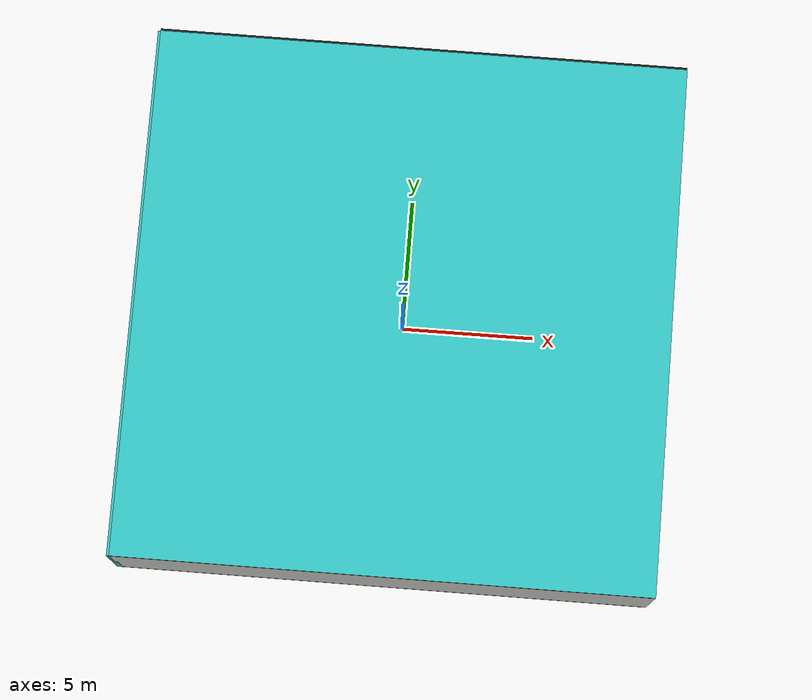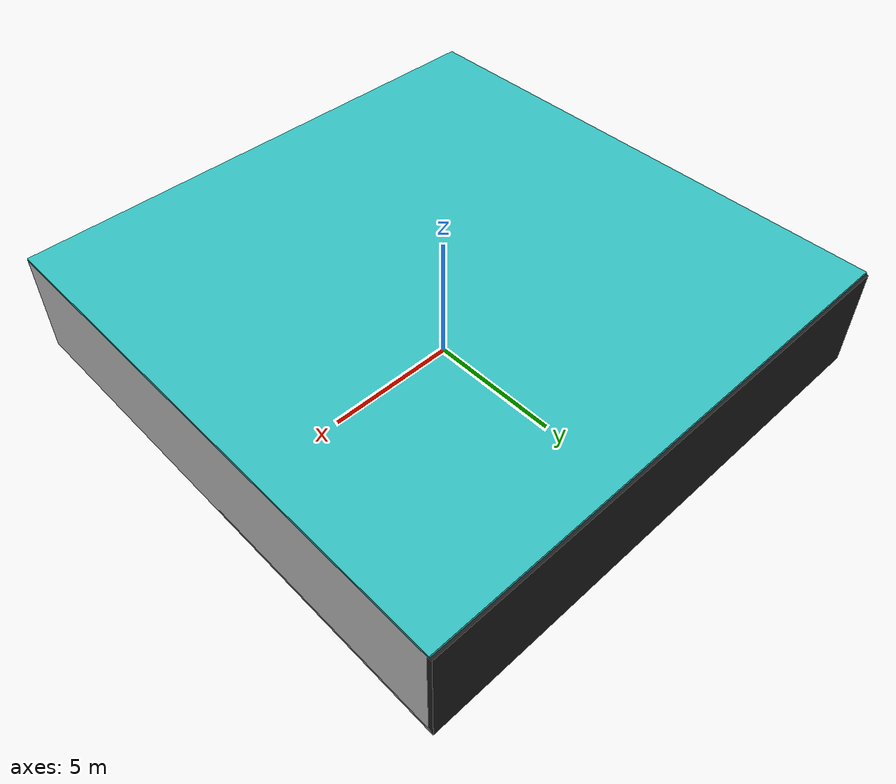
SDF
<sdf version="1.4">
 <world name="default">
  <physics type="ode">
   <max_step_size>0.001</max_step_size>
   <real_time_factor>1</real_time_factor>
   <real_time_update_rate>1000</real_time_update_rate>
   <gravity>0 0 -9.8</gravity>
  </physics>
  <scene><ambient>0.4 0.4 0.4 1</ambient><background>0.7 0.7 0.7 1</background><shadows>1</shadows></scene>
  <model name="Surrounding">
   <static>1</static>
   <link name="Ceiling">
    <collision name="Ceiling_Collision"><geometry><box><size>20 20 0.1</size></box></geometry></collision>
    <visual name="Ceiling_Visual">
     <geometry><box><size>20 20 0.1</size></box></geometry>
     <material>
      <script>
       <uri>file://media/materials/scripts/gazebo.material</uri>
       <name>Gazebo/TurquoiseGlowOutline</name>
      </script>
     </material>
    </visual>
    <pose>0 0 4.05 0 0 0</pose>
   </link>
   <link name="Wall_South">
    <collision name="Wall_South_Collision">
     <geometry><box><size>20 0 4</size></box></geometry>
     <pose>0 0 2 0 -0 0</pose>
    </collision>
    <visual name="Wall_South_Visual">
     <pose>0 0 2 0 -0 0</pose>
     <geometry><box><size>20 0 4</size></box></geometry>
     <material>
      <script><uri>file://media/materials/scripts/gazebo.material</uri><name>Gazebo/CeilingTiled</name></script>
     </material>
    </visual>
    <velocity_decay><linear>0</linear><angular>0</angular></velocity_decay>
    <pose>0 -10 0 0 -0 0</pose>
   </link>
   <link name="Wall_East">
    <collision name="Wall_21_Collision">
     <geometry><box><size>20 0 4</size></box></geometry>
     <pose>0 0 2 0 -0 0</pose>
    </collision>
    <visual name="Wall_21_Visual">
     <pose>0 0 2 0 -0 0</pose>
     <geometry><box><size>20 0 4</size></box></geometry>
     <material>
      <script><uri>file://media/materials/scripts/gazebo.material</uri><name>Gazebo/CloudySky</name></script>
     </material>
    </visual>
    <velocity_decay><linear>0</linear><angular>0</angular></velocity_decay>
    <pose>10 0 0 0 -0 1.5708</pose>
   </link>
   <link name="Wall_North">
    <collision name="Wall_22_Collision">
     <geometry><box><size>20 0.2 4</size></box></geometry>
     <pose>0 0 2 0 -0 0</pose>
    </collision>
    <visual name="Wall_22_Visual">
     <pose>0 0 2 0 -0 0</pose>
     <geometry><box><size>20 0.2 4</size></box></geometry>
     <material>
      <script><uri>file://media/materials/scripts/gazebo.material</uri><name>Gazebo/FlatBlack</name></script>
     </material>
    </visual>
    <velocity_decay><linear>0</linear><angular>0</angular></velocity_decay>
    <pose>0 10 0 0 -0 0</pose>
   </link>
   <link name="Wall_West">
    <collision name="Wall_23_Collision">
     <geometry><box><size>20 0.2 4</size></box></geometry>
     <pose>0 0 2 0 -0 0</pose>
    </collision>
    <visual name="Wall_23_Visual">
     <pose>0 0 2 0 -0 0</pose>
     <geometry><box><size>20 0.2 4</size></box></geometry>
     <material>
      <script><uri>file://media/materials/scripts/gazebo.material</uri><name>Gazebo/Turquoise</name></script>
     </material>
    </visual>
    <velocity_decay><linear>0</linear><angular>0</angular></velocity_decay>
    <pose>-10 0 0 0 0 -1.5708</pose>
   </link>
   <link name="Ground_link">
    <collision name="collision">
     <pose>0 0 .05 0 -0 0</pose>
     <geometry><box><size>20 20 0.1</size></box></geometry>
    </collision>
    <visual name="visual">
     <pose>0 0 .05 0 -0 0</pose>
     <geometry><box><size>20 20 0.1</size></box></geometry>
     <material>
      <script><uri>file://media/materials/scripts/gazebo.material</uri><name>Gazebo/JointAnchor</name></script>
     </material>
    </visual>
   </link>
   <static>1</static>
  </model>
  <spherical_coordinates>
   <surface_model>EARTH_WGS84</surface_model>
   <latitude_deg>0</latitude_deg>
   <longitude_deg>0</longitude_deg>
   <elevation>0</elevation>
   <heading_deg>0</heading_deg>
  </spherical_coordinates>
  <light name="lightball_0" type="diffuse">
   <diffuse>0.8 0.8 0.8 1</diffuse>
   <specular>0.2 0.2 0.2 1</specular>
   <attenuation>
    <range>100</range>
    <constant>0.7</constant>
    <linear>0.01</linear>
    <quadratic>0.001</quadratic>
   </attenuation>
   <direction>-0.5 0.1 -0.9</direction>
   <pose>8.54362082812 8.17659436403 1.16834725509 0 0 0</pose>
  </light>
  <light name="lightball_1" type="diffuse">
   <diffuse>0.8 0.8 0.8 1</diffuse>
   <specular>0.2 0.2 0.2 1</specular>
   <attenuation>
    <range>100</range>
    <constant>0.7</constant>
    <linear>0.01</linear>
    <quadratic>0.001</quadratic>
   </attenuation>
   <direction>-0.5 0.1 -0.9</direction>
   <pose>-9.10963401681 6.21896974493 2.26628752897 0 0 0</pose>
  </light>
  <light name="lightball_2" type="diffuse">
   <diffuse>0.8 0.8 0.8 1</diffuse>
   <specular>0.2 0.2 0.2 1</specular>
   <attenuation>
    <range>100</range>
    <constant>0.7</constant>
    <linear>0.01</linear>
    <quadratic>0.001</quadratic>
   </attenuation>
   <direction>-0.5 0.1 -0.9</direction>
   <pose>8.02421933652 7.08996026163 2.02982740625 0 0 0</pose>
  </light>
  <light name="lightball_3" type="diffuse">
   <diffuse>0.8 0.8 0.8 1</diffuse>
   <specular>0.2 0.2 0.2 1</specular>
   <attenuation>
    <range>100</range>
    <constant>0.7</constant>
    <linear>0.01</linear>
    <quadratic>0.001</quadratic>
   </attenuation>
   <direction>-0.5 0.1 -0.9</direction>
   <pose>-5.1747063614 4.33202017133 0.753162632743 0 0 0</pose>
  </light>
  <light name="lightball_4" type="diffuse">
   <diffuse>0.8 0.8 0.8 1</diffuse>
   <specular>0.2 0.2 0.2 1</specular>
   <attenuation>
    <range>100</range>
    <constant>0.7</constant>
    <linear>0.01</linear>
    <quadratic>0.001</quadratic>
   </attenuation>
   <direction>-0.5 0.1 -0.9</direction>
   <pose>5.70740420136 9.98406849504 0.847894281732 0 0 0</pose>
  </light>
  <light name="lightball_5" type="diffuse">
   <diffuse>0.8 0.8 0.8 1</diffuse>
   <specular>0.2 0.2 0.2 1</specular>
   <attenuation>
    <range>100</range>
    <constant>0.7</constant>
    <linear>0.01</linear>
    <quadratic>0.001</quadratic>
   </attenuation>
   <direction>-0.5 0.1 -0.9</direction>
   <pose>0.765034164185 7.06812832524 1.80423750739 0 0 0</pose>
  </light>
  <light name="lightball_6" type="diffuse">
   <diffuse>0.8 0.8 0.8 1</diffuse>
   <specular>0.2 0.2 0.2 1</specular>
   <attenuation>
    <range>100</range>
    <constant>0.7</constant>
    <linear>0.01</linear>
    <quadratic>0.001</quadratic>
   </attenuation>
   <direction>-0.5 0.1 -0.9</direction>
   <pose>-9.98679504863 3.31205794437 1.9278789288 0 0 0</pose>
  </light>
  <light name="lightball_7" type="diffuse">
   <diffuse>0.8 0.8 0.8 1</diffuse>
   <specular>0.2 0.2 0.2 1</specular>
   <attenuation>
    <range>100</range>
    <constant>0.7</constant>
    <linear>0.01</linear>
    <quadratic>0.001</quadratic>
   </attenuation>
   <direction>-0.5 0.1 -0.9</direction>
   <pose>-1.55469251564 3.8980188789 1.54636616818 0 0 0</pose>
  </light>
  <light name="lightball_8" type="diffuse">
   <diffuse>0.8 0.8 0.8 1</diffuse>
   <specular>0.2 0.2 0.2 1</specular>
   <attenuation>
    <range>100</range>
    <constant>0.7</constant>
    <linear>0.01</linear>
    <quadratic>0.001</quadratic>
   </attenuation>
   <direction>-0.5 0.1 -0.9</direction>
   <pose>4.98953937682 6.09172081379 1.23699910665 0 0 0</pose>
  </light>
  <light name="lightball_9" type="diffuse">
   <diffuse>0.8 0.8 0.8 1</diffuse>
   <specular>0.2 0.2 0.2 1</specular>
   <attenuation>
    <range>100</range>
    <constant>0.7</constant>
    <linear>0.01</linear>
    <quadratic>0.001</quadratic>
   </attenuation>
   <direction>-0.5 0.1 -0.9</direction>
   <pose>-2.20960085803 4.59267067434 3.19505307159 0 0 0</pose>
  </light>
  <light name="lightball_10" type="diffuse">
   <diffuse>0.8 0.8 0.8 1</diffuse>
   <specular>0.2 0.2 0.2 1</specular>
   <attenuation>
    <range>100</range>
    <constant>0.7</constant>
    <linear>0.01</linear>
    <quadratic>0.001</quadratic>
   </attenuation>
   <direction>-0.5 0.1 -0.9</direction>
   <pose>-8.31344450752 0.990720869918 2.79573534313 0 0 0</pose>
  </light>
  <light name="lightball_11" type="diffuse">
   <diffuse>0.8 0.8 0.8 1</diffuse>
   <specular>0.2 0.2 0.2 1</specular>
   <attenuation>
    <range>100</range>
    <constant>0.7</constant>
    <linear>0.01</linear>
    <quadratic>0.001</quadratic>
   </attenuation>
   <direction>-0.5 0.1 -0.9</direction>
   <pose>4.95979582476 5.21551110961 3.60198148216 0 0 0</pose>
  </light>
  <light name="lightball_12" type="diffuse">
   <diffuse>0.8 0.8 0.8 1</diffuse>
   <specular>0.2 0.2 0.2 1</specular>
   <attenuation>
    <range>100</range>
    <constant>0.7</constant>
    <linear>0.01</linear>
    <quadratic>0.001</quadratic>
   </attenuation>
   <direction>-0.5 0.1 -0.9</direction>
   <pose>7.37191981821 9.33857514449 1.47885371746 0 0 0</pose>
  </light>
  <include>
   <uri>model://textured_shapes</uri>
   <pose>-7.76811241211 1.5283862865 0 0 0 2.06089176768</pose>
  </include>
  <include><uri>model://cabinet</uri><pose>-5.08483423176 -1.00320592544 0 0 0 1.57225347662</pose></include>
  <include>
   <uri>model://robocup_3Dsim_goal</uri>
   <pose>-4.92011345904 3.90595111338 0 0 0 2.96292268005</pose>
  </include>
  <include><uri>model://cabinet</uri><pose>-2.06831333904 -7.69988929511 0 0 0 1.27686100848</pose></include>
  <include><uri>model://cabinet</uri><pose>4.54971639699 -4.33105603112 0 0 0 1.67393149247</pose></include>
  <include><uri>model://cabinet</uri><pose>8.09993368603 2.11126974695 0 0 0 2.86215409606</pose></include>
  <include><uri>model://table</uri><pose>7.2535733487 4.12835762238 0 0 0 0.71908574497</pose></include>
 </world>
</sdf>

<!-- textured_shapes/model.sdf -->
<sdf version="1.6">
  <model name="textured_shapes">
    <pose>0 0 0.5 0 0 0</pose>
    <link name="box">
      <pose>0 -1.5 0 0 0 0</pose>
      <collision name="collision">
        <geometry>
          <box>
            <size>1 1 1</size>
          </box>
        </geometry>
      </collision>
      <visual name="visual">
        <geometry>
          <box>
            <size>1 1 1</size>
          </box>
        </geometry>
        <material>
          <script>
            <uri>model://../model_source/models/textured_shapes/materials/scripts</uri>
            <uri>model://../model_source/models/textured_shapes/materials/textures</uri>
            <name>TexturedShape/Squares</name>
          </script>
        </material>
      </visual>
    </link>
    <link name="sphere">
      <collision name="collision">
        <geometry>
          <sphere>
            <radius>0.5</radius>
          </sphere>
        </geometry>
      </collision>
      <visual name="visual">
        <geometry>
          <sphere>
            <radius>0.5</radius>
          </sphere>
        </geometry>
        <material>
          <script>
            <uri>model://../model_source/models/textured_shapes/materials/scripts</uri>
            <uri>model://../model_source/models/textured_shapes/materials/textures</uri>
            <name>TexturedShape/Squares</name>
          </script>
        </material>
      </visual>
    </link>
    <link name="cylinder">
      <pose>0 1.5 0 0 0 0</pose>
      <collision name="collision">
        <geometry>
          <cylinder>
            <radius>0.5</radius>
            <length>1</length>
          </cylinder>
        </geometry>
      </collision>
      <visual name="visual">
        <geometry>
          <cylinder>
            <radius>0.5</radius>
            <length>1</length>
          </cylinder>
        </geometry>
        <material>
          <script>
            <uri>model://../model_source/models/textured_shapes/materials/scripts</uri>
            <uri>model://../model_source/models/textured_shapes/materials/textures</uri>
            <name>TexturedShape/Squares</name>
          </script>
        </material>
      </visual>
    </link>
  </model>
</sdf>

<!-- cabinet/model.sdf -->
<sdf version="1.5">
  <model name="cabinet">
    <static>true</static>
    <link name="cabinet_bottom_plate">
      <inertial>
        <pose>0 0 -1 0 0 0</pose>
        <inertia>
          <ixx>2.050000</ixx>
          <ixy>0</ixy>
          <ixz>0</ixz>
          <iyy>2.050000</iyy>
          <iyz>0</iyz>
          <izz>2.050000</izz>
        </inertia>
        <mass>25.000000</mass>
      </inertial>
      <collision name="cabinet_bottom_plate_geom">
        <pose>0 0 0.010000 0 0 0</pose>
        <geometry>
          <box>
            <size>0.450000 0.450000 0.020000</size>
          </box>
        </geometry>
      </collision>
      <visual name="cabinet_bottom_plate_geom_visual">
        <pose>0 0 0.010000 0 0 0</pose>
        <geometry>
          <box>
            <size>0.450000 0.450000 0.020000</size>
          </box>
        </geometry>
        <material>
          <script>
            <uri>model://media/materials/scripts/gazebo.material</uri>
            <name>Gazebo/Wood</name>
          </script>
        </material>
      </visual>
      <collision name="cabinet_bottom_plate_geom_cabinet_back_plate">
        <pose>0.235000 0 0.510000 0 0 0</pose>
        <geometry>
          <box>
            <size>0.020000 0.450000 1.020000</size>
          </box>
        </geometry>
      </collision>
      <visual name="cabinet_bottom_plate_geom_cabinet_back_plate_visual">
        <pose>0.235000 0 0.510000 0 0 0</pose>
        <geometry>
          <box>
            <size>0.020000 0.450000 1.020000</size>
          </box>
        </geometry>
        <material>
          <script>
            <uri>model://media/materials/scripts/gazebo.material</uri>
            <name>Gazebo/Wood</name>
          </script>
        </material>
      </visual>
      <collision name="cabinet_bottom_plate_geom_cabinet_left_plate">
        <pose>0 0.235000 0.510000 0 0 0</pose>
        <geometry>
          <box>
            <size>0.450000 0.020000 1.020000</size>
          </box>
        </geometry>
      </collision>
      <visual name="cabinet_bottom_plate_geom_cabinet_left_plate_visual">
        <pose>0 0.235000 0.510000 0 0 0</pose>
        <geometry>
          <box>
            <size>0.450000 0.020000 1.020000</size>
          </box>
        </geometry>
        <material>
          <script>
            <uri>model://media/materials/scripts/gazebo.material</uri>
            <name>Gazebo/Wood</name>
          </script>
        </material>
      </visual>
      <collision name="cabinet_bottom_plate_geom_cabinet_middle_plate">
        <pose>0 0 0.510000 0 0 0</pose>
        <geometry>
          <box>
            <size>0.450000 0.450000 0.020000</size>
          </box>
        </geometry>
      </collision>
      <visual name="cabinet_bottom_plate_geom_cabinet_middle_plate_visual">
        <pose>0 0 0.510000 0 0 0</pose>
        <geometry>
          <box>
            <size>0.450000 0.450000 0.020000</size>
          </box>
        </geometry>
        <material>
          <script>
            <uri>model://media/materials/scripts/gazebo.material</uri>
            <name>Gazebo/Wood</name>
          </script>
        </material>
      </visual>
      <collision name="cabinet_bottom_plate_geom_cabinet_right_plate">
        <pose>0 -0.235000 0.510000 0 0 0</pose>
        <geometry>
          <box>
            <size>0.450000 0.020000 1.020000</size>
          </box>
        </geometry>
      </collision>
      <visual name="cabinet_bottom_plate_geom_cabinet_right_plate_visual">
        <pose>0 -0.235000 0.510000 0 0 0</pose>
        <geometry>
          <box>
            <size>0.450000 0.020000 1.020000</size>
          </box>
        </geometry>
        <material>
          <script>
            <uri>model://media/materials/scripts/gazebo.material</uri>
            <name>Gazebo/Wood</name>
          </script>
        </material>
      </visual>
      <collision name="cabinet_bottom_plate_geom_cabinet_top_plate">
        <pose>0 0 1.010000 0 0 0</pose>
        <geometry>
          <box>
            <size>0.450000 0.450000 0.020000</size>
          </box>
        </geometry>
      </collision>
      <visual name="cabinet_bottom_plate_geom_cabinet_top_plate_visual">
        <pose>0 0 1.010000 0 0 0</pose>
        <geometry>
          <box>
            <size>0.450000 0.450000 0.020000</size>
          </box>
        </geometry>
        <material>
          <script>
            <uri>model://media/materials/scripts/gazebo.material</uri>
            <name>Gazebo/Wood</name>
          </script>
        </material>
      </visual>
    </link>
  </model>
</sdf>

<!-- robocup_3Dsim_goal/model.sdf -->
<sdf version="1.5">
  <model name="robocup_3d_goal">
    <static>true</static>
    <link name="left_post">
      <pose>0 1.05 0.45 0 0 0</pose>
      <collision name="collision">
        <geometry>
          <cylinder>
            <radius>0.05</radius>
            <length>0.9</length>
          </cylinder>
        </geometry>
      </collision>
      <visual name="visual">
        <geometry>
          <cylinder>
            <radius>0.05</radius>
            <length>0.9</length>
          </cylinder>
        </geometry>
        <material>
          <script>
            <uri>file://media/materials/scripts/gazebo.material</uri>
            <name>Gazebo/ZincYellow</name>
          </script>
        </material>
      </visual>
    </link>
    <link name="left_support_horiz_lower">
      <pose>0.30 1.05 0.01 0 0 0</pose>
      <collision name="collision">
        <geometry>
          <box>
            <size>0.50 0.02 0.02</size>
          </box>
        </geometry>
      </collision>
      <visual name="visual">
        <geometry>
          <box>
            <size>0.50 0.02 0.02</size>
          </box>
        </geometry>
        <material>
          <script>
            <uri>file://media/materials/scripts/gazebo.material</uri>
            <name>Gazebo/White</name>
          </script>
        </material>
      </visual>
    </link>
    <link name="left_support_horiz_upper">
      <pose>0.30 1.05 0.79 0 0 0</pose>
      <collision name="collision">
        <geometry>
          <box>
            <size>0.50 0.02 0.02</size>
          </box>
        </geometry>
      </collision>
      <visual name="visual">
        <geometry>
          <box>
            <size>0.50 0.02 0.02</size>
          </box>
        </geometry>
        <material>
          <script>
            <uri>file://media/materials/scripts/gazebo.material</uri>
            <name>Gazebo/White</name>
          </script>
        </material>
      </visual>
    </link>
    <link name="left_support_vertical">
      <pose>0.56 1.05 0.4 0 1.5708 0</pose>
      <collision name="collision">
        <geometry>
          <box>
            <size>0.80 0.02 0.02</size>
          </box>
        </geometry>
      </collision>
      <visual name="visual">
        <geometry>
          <box>
            <size>0.80 0.02 0.02</size>
          </box>
        </geometry>
        <material>
          <script>
            <uri>file://media/materials/scripts/gazebo.material</uri>
            <name>Gazebo/White</name>
          </script>
        </material>
      </visual>
    </link>
    <link name="right_support_horiz_lower">
      <pose>0.30 -1.05 0.01 0 0 0</pose>
      <collision name="collision">
        <geometry>
          <box>
            <size>0.50 0.02 0.02</size>
          </box>
        </geometry>
      </collision>
      <visual name="visual">
        <geometry>
          <box>
            <size>0.50 0.02 0.02</size>
          </box>
        </geometry>
        <material>
          <script>
            <uri>file://media/materials/scripts/gazebo.material</uri>
            <name>Gazebo/White</name>
          </script>
        </material>
      </visual>
    </link>
    <link name="right_support_horiz_upper">
      <pose>0.30 -1.05 0.79 0 0 0</pose>
      <collision name="collision">
        <geometry>
          <box>
            <size>0.50 0.02 0.02</size>
          </box>
        </geometry>
      </collision>
      <visual name="visual">
        <geometry>
          <box>
            <size>0.50 0.02 0.02</size>
          </box>
        </geometry>
        <material>
          <script>
            <uri>file://media/materials/scripts/gazebo.material</uri>
            <name>Gazebo/White</name>
          </script>
        </material>
      </visual>
    </link>
    <link name="right_support_vertical">
      <pose>0.56 -1.05 0.4 0 1.5708 0</pose>
      <collision name="collision">
        <geometry>
          <box>
            <size>0.80 0.02 0.02</size>
          </box>
        </geometry>
      </collision>
      <visual name="visual">
        <geometry>
          <box>
            <size>0.80 0.02 0.02</size>
          </box>
        </geometry>
        <material>
          <script>
            <uri>file://media/materials/scripts/gazebo.material</uri>
            <name>Gazebo/White</name>
          </script>
        </material>
      </visual>
    </link>
    <link name="center_support_horiz_lower">
      <pose>0.56 0 0.01 0 1.5708 0</pose>
      <collision name="collision">
        <geometry>
          <box>
            <size>0.02 2.08 0.02</size>
          </box>
        </geometry>
      </collision>
      <visual name="visual">
        <geometry>
          <box>
            <size>0.02 2.08 0.02</size>
          </box>
        </geometry>
        <material>
          <script>
            <uri>file://media/materials/scripts/gazebo.material</uri>
            <name>Gazebo/White</name>
          </script>
        </material>
      </visual>
    </link>
    <link name="center_support_horiz_upper">
      <pose>0.56 0 0.79 0 1.5708 0</pose>
      <collision name="collision">
        <geometry>
          <box>
            <size>0.02 2.08 0.02</size>
          </box>
        </geometry>
      </collision>
      <visual name="visual">
        <geometry>
          <box>
            <size>0.02 2.08 0.02</size>
          </box>
        </geometry>
        <material>
          <script>
            <uri>file://media/materials/scripts/gazebo.material</uri>
            <name>Gazebo/White</name>
          </script>
        </material>
      </visual>
    </link>
    <link name="right_post">
      <pose>0 -1.05 0.45 0 0 0</pose>
      <collision name="collision">
        <geometry>
          <cylinder>
            <radius>0.05</radius>
            <length>0.9</length>
          </cylinder>
        </geometry>
      </collision>
      <visual name="visual">
        <geometry>
          <cylinder>
            <radius>0.05</radius>
            <length>0.9</length>
          </cylinder>
        </geometry>
        <material>
          <script>
            <uri>file://media/materials/scripts/gazebo.material</uri>
            <name>Gazebo/ZincYellow</name>
          </script>
        </material>
      </visual>
    </link>
    <link name="crossbar">
      <pose>0 0 0.85 1.57 1.57 0</pose>
      <collision name="collision">
        <geometry>
          <cylinder>
            <radius>0.05</radius>
            <length>2.0</length>
          </cylinder>
        </geometry>
      </collision>
      <visual name="visual">
        <geometry>
          <cylinder>
            <radius>0.05</radius>
            <length>2.0</length>
          </cylinder>
        </geometry>
        <material>
          <script>
            <uri>file://media/materials/scripts/gazebo.material</uri>
            <name>Gazebo/ZincYellow</name>
          </script>
        </material>
      </visual>
    </link>
    <link name="center_net">
      <pose>0.56 0 0.40 0 0 0</pose>
      <collision name="collision">
        <geometry>
          <box>
            <size>0.01 2.1 0.80</size>
          </box>
        </geometry>
      </collision>
      <visual name="visual">
        <geometry>
          <box>
            <size>0.01 2.1 0.80</size>
          </box>
        </geometry>
        <material>
          <script>
            <uri>model://../model_source/models/robocup09_spl_field/materials/scripts/</uri>
            <uri>model://../model_source/models/robocup09_spl_field/materials/textures/</uri>
            <name>RoboCup/Net</name>
          </script>
        </material>
      </visual>
    </link>
    <link name="left_net">
      <pose>0.30 1.05 0.40 0 0 0</pose>
      <collision name="collision">
        <geometry>
          <box>
            <size>0.50 0.01 0.76</size>
          </box>
        </geometry>
      </collision>
      <visual name="visual">
        <geometry>
          <box>
            <size>0.50 0.01 0.76</size>
          </box>
        </geometry>
        <material>
          <script>
            <uri>model://../model_source/models/robocup09_spl_field/materials/scripts/</uri>
            <uri>model://../model_source/models/robocup09_spl_field/materials/textures/</uri>
            <name>RoboCup/Net</name>
          </script>
        </material>
      </visual>
    </link>
    <link name="right_net">
      <pose>0.30 -1.05 0.40 0 0 0</pose>
      <collision name="collision">
        <geometry>
          <box>
            <size>0.50 0.01 0.76</size>
          </box>
        </geometry>
      </collision>
      <visual name="visual">
        <geometry>
          <box>
            <size>0.50 0.01 0.76</size>
          </box>
        </geometry>
        <material>
          <script>
            <uri>model://../model_source/models/robocup09_spl_field/materials/scripts/</uri>
            <uri>model://../model_source/models/robocup09_spl_field/materials/textures/</uri>
            <name>RoboCup/Net</name>
          </script>
        </material>
      </visual>
    </link>
  </model>
</sdf>

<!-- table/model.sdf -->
<sdf version="1.5">
  <model name="table">
    <static>true</static>
    <link name="link">
      <collision name="surface">
        <pose>0 0 1.0 0 0 0</pose>
        <geometry>
          <box>
            <size>1.5 0.8 0.03</size>
          </box>
        </geometry>
        <surface>
          <friction>
            <ode>
              <mu>0.6</mu>
              <mu2>0.6</mu2>
            </ode>
          </friction>
        </surface>
      </collision>
      <visual name="visual1">
        <pose>0 0 1.0 0 0 0</pose>
        <geometry>
          <box>
            <size>1.5 0.8 0.03</size>
          </box>
        </geometry>
        <material>
          <script>
            <uri>model://media/materials/scripts/gazebo.material</uri>
            <name>Gazebo/Wood</name>
          </script>
        </material>
      </visual>
      <collision name="front_left_leg">
        <pose>0.68 0.38 0.5 0 0 0</pose>
        <geometry>
          <cylinder>
            <radius>0.02</radius>
            <length>1.0</length>
          </cylinder>
        </geometry>
      </collision>
      <visual name="front_left_leg">
        <pose>0.68 0.38 0.5 0 0 0</pose>
        <geometry>
          <cylinder>
            <radius>0.02</radius>
            <length>1.0</length>
          </cylinder>
        </geometry>
        <material>
          <script>
            <uri>model://media/materials/scripts/gazebo.material</uri>
            <name>Gazebo/Grey</name>
          </script>
        </material>
      </visual>
      <collision name="front_right_leg">
        <pose>0.68 -0.38 0.5 0 0 0</pose>
        <geometry>
          <cylinder>
            <radius>0.02</radius>
            <length>1.0</length>
          </cylinder>
        </geometry>
      </collision>
      <visual name="front_right_leg">
        <pose>0.68 -0.38 0.5 0 0 0</pose>
        <geometry>
          <cylinder>
            <radius>0.02</radius>
            <length>1.0</length>
          </cylinder>
        </geometry>
        <material>
          <script>
            <uri>model://media/materials/scripts/gazebo.material</uri>
            <name>Gazebo/Grey</name>
          </script>
        </material>
      </visual>
      <collision name="back_right_leg">
        <pose>-0.68 -0.38 0.5 0 0 0</pose>
        <geometry>
          <cylinder>
            <radius>0.02</radius>
            <length>1.0</length>
          </cylinder>
        </geometry>
      </collision>
      <visual name="back_right_leg">
        <pose>-0.68 -0.38 0.5 0 0 0</pose>
        <geometry>
          <cylinder>
            <radius>0.02</radius>
            <length>1.0</length>
          </cylinder>
        </geometry>
        <material>
          <script>
            <uri>model://media/materials/scripts/gazebo.material</uri>
            <name>Gazebo/Grey</name>
          </script>
        </material>
      </visual>
      <collision name="back_left_leg">
        <pose>-0.68 0.38 0.5 0 0 0</pose>
        <geometry>
          <cylinder>
            <radius>0.02</radius>
            <length>1.0</length>
          </cylinder>
        </geometry>
      </collision>
      <visual name="back_left_leg">
        <pose>-0.68 0.38 0.5 0 0 0</pose>
        <geometry>
          <cylinder>
            <radius>0.02</radius>
            <length>1.0</length>
          </cylinder>
        </geometry>
        <material>
          <script>
            <uri>model://media/materials/scripts/gazebo.material</uri>
            <name>Gazebo/Grey</name>
          </script>
        </material>
      </visual>
    </link>
  </model>
</sdf>
